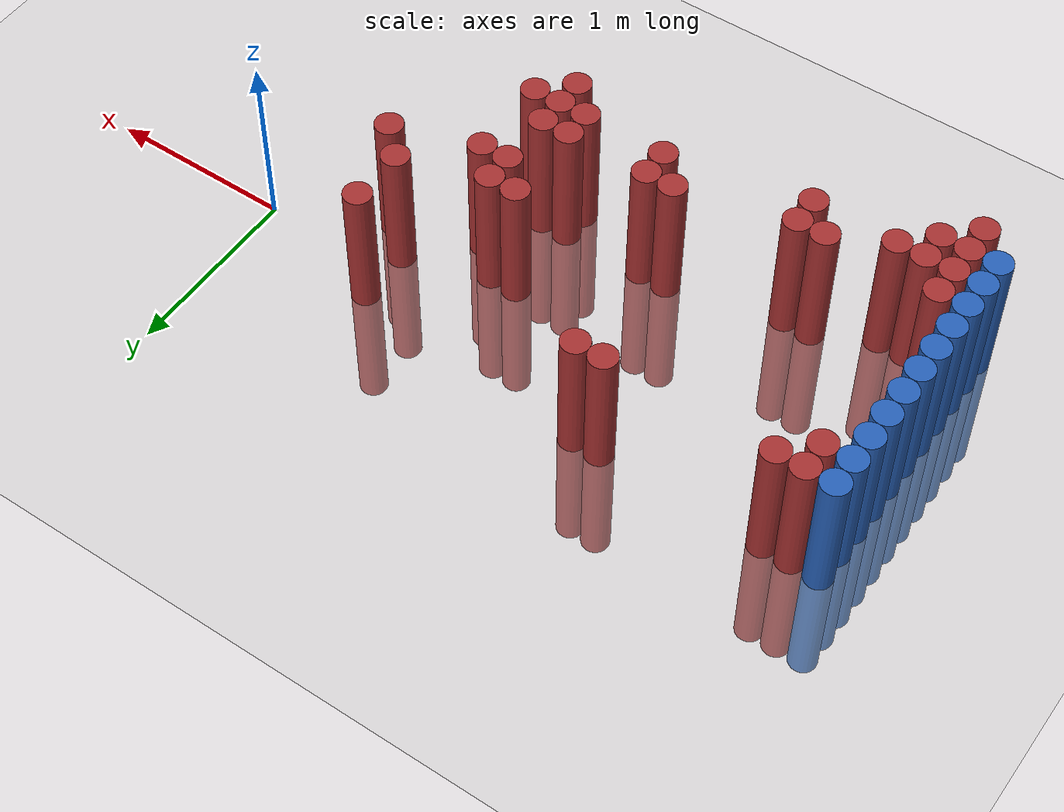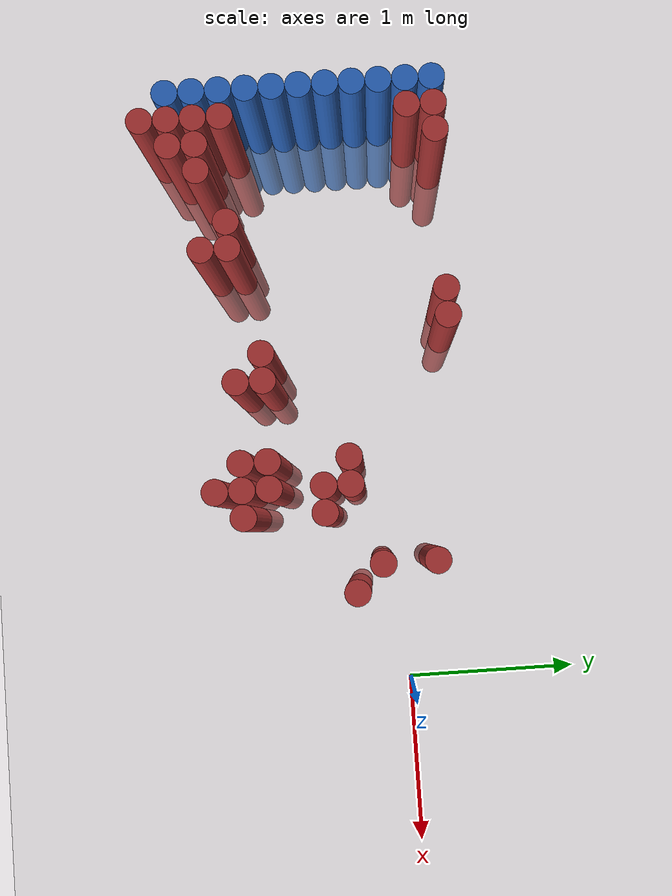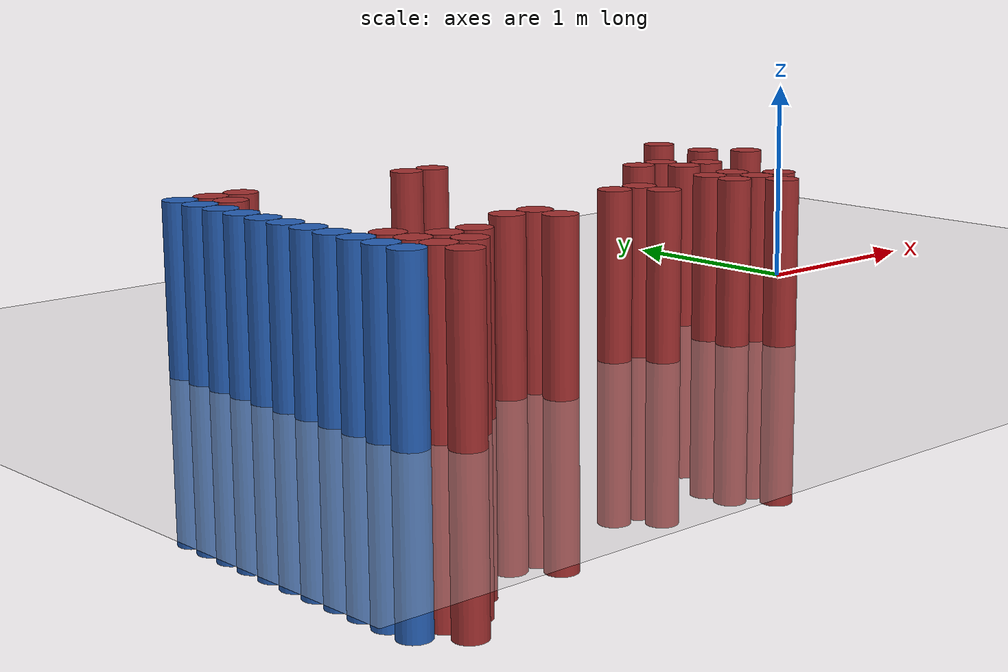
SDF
<sdf version="1.6">
 <world name="default">
  <model name="ground_plane">
   <static>1</static>
   <link name="link">
    <collision name="collision">
     <geometry><plane><normal>0 0 1</normal><size>100 100</size></plane></geometry>
     <surface><friction><ode><mu>100</mu><mu2>50</mu2></ode></friction></surface>
    </collision>
    <visual name="visual">
     <cast_shadows>0</cast_shadows>
     <geometry><plane><normal>0 0 1</normal><size>100 100</size></plane></geometry>
     <material>
      <script><uri>file://media/materials/scripts/gazebo.material</uri><name>Gazebo/Grey</name></script>
     </material>
    </visual>
   </link>
  </model>
  <model name="unit_cylinder_99">
   <static>1</static>
   <pose>-3.425000 -1.175000 0.000000 0.000000 0.000000 0.000000</pose>
   <link name="link">
    <inertial>
     <mass>1</mass>
     <inertia><ixx>0.145833</ixx><ixy>0</ixy><ixz>0</ixz><iyy>0.145833</iyy><iyz>0</iyz><izz>0.125</izz></inertia>
    </inertial>
    <collision name="collision">
     <geometry><cylinder><radius>0.075000</radius><length>1.5</length></cylinder></geometry>
    </collision>
    <visual name="visual">
     <geometry><cylinder><radius>0.075000</radius><length>1.5</length></cylinder></geometry>
     <material>
      <ambient>0.152000 0.379000 0.720000 1</ambient>
      <diffuse>0.152000 0.379000 0.720000 1</diffuse>
     </material>
     <material>
      <script><name>Gazebo/Grey</name><uri>file://media/materials/scripts/gazebo.material</uri></script>
     </material>
    </visual>
   </link>
  </model>
  <model name="unit_cylinder_101">
   <static>1</static>
   <pose>-3.425000 -1.025000 0.000000 0.000000 0.000000 0.000000</pose>
   <link name="link">
    <inertial>
     <mass>1</mass>
     <inertia><ixx>0.145833</ixx><ixy>0</ixy><ixz>0</ixz><iyy>0.145833</iyy><iyz>0</iyz><izz>0.125</izz></inertia>
    </inertial>
    <collision name="collision">
     <geometry><cylinder><radius>0.075000</radius><length>1.5</length></cylinder></geometry>
    </collision>
    <visual name="visual">
     <geometry><cylinder><radius>0.075000</radius><length>1.5</length></cylinder></geometry>
     <material>
      <ambient>0.152000 0.379000 0.720000 1</ambient>
      <diffuse>0.152000 0.379000 0.720000 1</diffuse>
     </material>
     <material>
      <script><name>Gazebo/Grey</name><uri>file://media/materials/scripts/gazebo.material</uri></script>
     </material>
    </visual>
   </link>
  </model>
  <model name="unit_cylinder_103">
   <static>1</static>
   <pose>-3.425000 -0.875000 0.000000 0.000000 0.000000 0.000000</pose>
   <link name="link">
    <inertial>
     <mass>1</mass>
     <inertia><ixx>0.145833</ixx><ixy>0</ixy><ixz>0</ixz><iyy>0.145833</iyy><iyz>0</iyz><izz>0.125</izz></inertia>
    </inertial>
    <collision name="collision">
     <geometry><cylinder><radius>0.075000</radius><length>1.5</length></cylinder></geometry>
    </collision>
    <visual name="visual">
     <geometry><cylinder><radius>0.075000</radius><length>1.5</length></cylinder></geometry>
     <material>
      <ambient>0.152000 0.379000 0.720000 1</ambient>
      <diffuse>0.152000 0.379000 0.720000 1</diffuse>
     </material>
     <material>
      <script><name>Gazebo/Grey</name><uri>file://media/materials/scripts/gazebo.material</uri></script>
     </material>
    </visual>
   </link>
  </model>
  <model name="unit_cylinder_105">
   <static>1</static>
   <pose>-3.425000 -0.725000 0.000000 0.000000 0.000000 0.000000</pose>
   <link name="link">
    <inertial>
     <mass>1</mass>
     <inertia><ixx>0.145833</ixx><ixy>0</ixy><ixz>0</ixz><iyy>0.145833</iyy><iyz>0</iyz><izz>0.125</izz></inertia>
    </inertial>
    <collision name="collision">
     <geometry><cylinder><radius>0.075000</radius><length>1.5</length></cylinder></geometry>
    </collision>
    <visual name="visual">
     <geometry><cylinder><radius>0.075000</radius><length>1.5</length></cylinder></geometry>
     <material>
      <ambient>0.152000 0.379000 0.720000 1</ambient>
      <diffuse>0.152000 0.379000 0.720000 1</diffuse>
     </material>
     <material>
      <script><name>Gazebo/Grey</name><uri>file://media/materials/scripts/gazebo.material</uri></script>
     </material>
    </visual>
   </link>
  </model>
  <model name="unit_cylinder_107">
   <static>1</static>
   <pose>-3.425000 -0.575000 0.000000 0.000000 0.000000 0.000000</pose>
   <link name="link">
    <inertial>
     <mass>1</mass>
     <inertia><ixx>0.145833</ixx><ixy>0</ixy><ixz>0</ixz><iyy>0.145833</iyy><iyz>0</iyz><izz>0.125</izz></inertia>
    </inertial>
    <collision name="collision">
     <geometry><cylinder><radius>0.075000</radius><length>1.5</length></cylinder></geometry>
    </collision>
    <visual name="visual">
     <geometry><cylinder><radius>0.075000</radius><length>1.5</length></cylinder></geometry>
     <material>
      <ambient>0.152000 0.379000 0.720000 1</ambient>
      <diffuse>0.152000 0.379000 0.720000 1</diffuse>
     </material>
     <material>
      <script><name>Gazebo/Grey</name><uri>file://media/materials/scripts/gazebo.material</uri></script>
     </material>
    </visual>
   </link>
  </model>
  <model name="unit_cylinder_109">
   <static>1</static>
   <pose>-3.425000 -0.425000 0.000000 0.000000 0.000000 0.000000</pose>
   <link name="link">
    <inertial>
     <mass>1</mass>
     <inertia><ixx>0.145833</ixx><ixy>0</ixy><ixz>0</ixz><iyy>0.145833</iyy><iyz>0</iyz><izz>0.125</izz></inertia>
    </inertial>
    <collision name="collision">
     <geometry><cylinder><radius>0.075000</radius><length>1.5</length></cylinder></geometry>
    </collision>
    <visual name="visual">
     <geometry><cylinder><radius>0.075000</radius><length>1.5</length></cylinder></geometry>
     <material>
      <ambient>0.152000 0.379000 0.720000 1</ambient>
      <diffuse>0.152000 0.379000 0.720000 1</diffuse>
     </material>
     <material>
      <script><name>Gazebo/Grey</name><uri>file://media/materials/scripts/gazebo.material</uri></script>
     </material>
    </visual>
   </link>
  </model>
  <model name="unit_cylinder_111">
   <static>1</static>
   <pose>-3.425000 -0.275000 0.000000 0.000000 0.000000 0.000000</pose>
   <link name="link">
    <inertial>
     <mass>1</mass>
     <inertia><ixx>0.145833</ixx><ixy>0</ixy><ixz>0</ixz><iyy>0.145833</iyy><iyz>0</iyz><izz>0.125</izz></inertia>
    </inertial>
    <collision name="collision">
     <geometry><cylinder><radius>0.075000</radius><length>1.5</length></cylinder></geometry>
    </collision>
    <visual name="visual">
     <geometry><cylinder><radius>0.075000</radius><length>1.5</length></cylinder></geometry>
     <material>
      <ambient>0.152000 0.379000 0.720000 1</ambient>
      <diffuse>0.152000 0.379000 0.720000 1</diffuse>
     </material>
     <material>
      <script><name>Gazebo/Grey</name><uri>file://media/materials/scripts/gazebo.material</uri></script>
     </material>
    </visual>
   </link>
  </model>
  <model name="unit_cylinder_113">
   <static>1</static>
   <pose>-3.425000 -0.125000 0.000000 0.000000 0.000000 0.000000</pose>
   <link name="link">
    <inertial>
     <mass>1</mass>
     <inertia><ixx>0.145833</ixx><ixy>0</ixy><ixz>0</ixz><iyy>0.145833</iyy><iyz>0</iyz><izz>0.125</izz></inertia>
    </inertial>
    <collision name="collision">
     <geometry><cylinder><radius>0.075000</radius><length>1.5</length></cylinder></geometry>
    </collision>
    <visual name="visual">
     <geometry><cylinder><radius>0.075000</radius><length>1.5</length></cylinder></geometry>
     <material>
      <ambient>0.152000 0.379000 0.720000 1</ambient>
      <diffuse>0.152000 0.379000 0.720000 1</diffuse>
     </material>
     <material>
      <script><name>Gazebo/Grey</name><uri>file://media/materials/scripts/gazebo.material</uri></script>
     </material>
    </visual>
   </link>
  </model>
  <model name="unit_cylinder_115">
   <static>1</static>
   <pose>-3.425000 0.025000 0.000000 0.000000 0.000000 0.000000</pose>
   <link name="link">
    <inertial>
     <mass>1</mass>
     <inertia><ixx>0.145833</ixx><ixy>0</ixy><ixz>0</ixz><iyy>0.145833</iyy><iyz>0</iyz><izz>0.125</izz></inertia>
    </inertial>
    <collision name="collision">
     <geometry><cylinder><radius>0.075000</radius><length>1.5</length></cylinder></geometry>
    </collision>
    <visual name="visual">
     <geometry><cylinder><radius>0.075000</radius><length>1.5</length></cylinder></geometry>
     <material>
      <ambient>0.152000 0.379000 0.720000 1</ambient>
      <diffuse>0.152000 0.379000 0.720000 1</diffuse>
     </material>
     <material>
      <script><name>Gazebo/Grey</name><uri>file://media/materials/scripts/gazebo.material</uri></script>
     </material>
    </visual>
   </link>
  </model>
  <model name="unit_cylinder_117">
   <static>1</static>
   <pose>-3.425000 0.175000 0.000000 0.000000 0.000000 0.000000</pose>
   <link name="link">
    <inertial>
     <mass>1</mass>
     <inertia><ixx>0.145833</ixx><ixy>0</ixy><ixz>0</ixz><iyy>0.145833</iyy><iyz>0</iyz><izz>0.125</izz></inertia>
    </inertial>
    <collision name="collision">
     <geometry><cylinder><radius>0.075000</radius><length>1.5</length></cylinder></geometry>
    </collision>
    <visual name="visual">
     <geometry><cylinder><radius>0.075000</radius><length>1.5</length></cylinder></geometry>
     <material>
      <ambient>0.152000 0.379000 0.720000 1</ambient>
      <diffuse>0.152000 0.379000 0.720000 1</diffuse>
     </material>
     <material>
      <script><name>Gazebo/Grey</name><uri>file://media/materials/scripts/gazebo.material</uri></script>
     </material>
    </visual>
   </link>
  </model>
  <model name="unit_cylinder_119">
   <static>1</static>
   <pose>-3.425000 0.325000 0.000000 0.000000 0.000000 0.000000</pose>
   <link name="link">
    <inertial>
     <mass>1</mass>
     <inertia><ixx>0.145833</ixx><ixy>0</ixy><ixz>0</ixz><iyy>0.145833</iyy><iyz>0</iyz><izz>0.125</izz></inertia>
    </inertial>
    <collision name="collision">
     <geometry><cylinder><radius>0.075000</radius><length>1.5</length></cylinder></geometry>
    </collision>
    <visual name="visual">
     <geometry><cylinder><radius>0.075000</radius><length>1.5</length></cylinder></geometry>
     <material>
      <ambient>0.152000 0.379000 0.720000 1</ambient>
      <diffuse>0.152000 0.379000 0.720000 1</diffuse>
     </material>
     <material>
      <script><name>Gazebo/Grey</name><uri>file://media/materials/scripts/gazebo.material</uri></script>
     </material>
    </visual>
   </link>
  </model>
  <model name="unit_cylinder_213">
   <static>1</static>
   <pose>-3.425000 -1.175000 0.000000 0.000000 0.000000 0.000000</pose>
   <link name="link">
    <inertial>
     <mass>1</mass>
     <inertia><ixx>0.145833</ixx><ixy>0</ixy><ixz>0</ixz><iyy>0.145833</iyy><iyz>0</iyz><izz>0.125</izz></inertia>
    </inertial>
    <collision name="collision">
     <geometry><cylinder><radius>0.075000</radius><length>1.5</length></cylinder></geometry>
    </collision>
    <visual name="visual">
     <geometry><cylinder><radius>0.075000</radius><length>1.5</length></cylinder></geometry>
     <material>
      <ambient>0.152000 0.379000 0.720000 1</ambient>
      <diffuse>0.152000 0.379000 0.720000 1</diffuse>
     </material>
     <material>
      <script><name>Gazebo/Grey</name><uri>file://media/materials/scripts/gazebo.material</uri></script>
     </material>
    </visual>
   </link>
  </model>
  <model name="unit_cylinder_214">
   <static>1</static>
   <pose>-3.425000 -1.025000 0.000000 0.000000 0.000000 0.000000</pose>
   <link name="link">
    <inertial>
     <mass>1</mass>
     <inertia><ixx>0.145833</ixx><ixy>0</ixy><ixz>0</ixz><iyy>0.145833</iyy><iyz>0</iyz><izz>0.125</izz></inertia>
    </inertial>
    <collision name="collision">
     <geometry><cylinder><radius>0.075000</radius><length>1.5</length></cylinder></geometry>
    </collision>
    <visual name="visual">
     <geometry><cylinder><radius>0.075000</radius><length>1.5</length></cylinder></geometry>
     <material>
      <ambient>0.152000 0.379000 0.720000 1</ambient>
      <diffuse>0.152000 0.379000 0.720000 1</diffuse>
     </material>
     <material>
      <script><name>Gazebo/Grey</name><uri>file://media/materials/scripts/gazebo.material</uri></script>
     </material>
    </visual>
   </link>
  </model>
  <model name="unit_cylinder_215">
   <static>1</static>
   <pose>-3.425000 -0.875000 0.000000 0.000000 0.000000 0.000000</pose>
   <link name="link">
    <inertial>
     <mass>1</mass>
     <inertia><ixx>0.145833</ixx><ixy>0</ixy><ixz>0</ixz><iyy>0.145833</iyy><iyz>0</iyz><izz>0.125</izz></inertia>
    </inertial>
    <collision name="collision">
     <geometry><cylinder><radius>0.075000</radius><length>1.5</length></cylinder></geometry>
    </collision>
    <visual name="visual">
     <geometry><cylinder><radius>0.075000</radius><length>1.5</length></cylinder></geometry>
     <material>
      <ambient>0.152000 0.379000 0.720000 1</ambient>
      <diffuse>0.152000 0.379000 0.720000 1</diffuse>
     </material>
     <material>
      <script><name>Gazebo/Grey</name><uri>file://media/materials/scripts/gazebo.material</uri></script>
     </material>
    </visual>
   </link>
  </model>
  <model name="unit_cylinder_216">
   <static>1</static>
   <pose>-3.425000 -0.725000 0.000000 0.000000 0.000000 0.000000</pose>
   <link name="link">
    <inertial>
     <mass>1</mass>
     <inertia><ixx>0.145833</ixx><ixy>0</ixy><ixz>0</ixz><iyy>0.145833</iyy><iyz>0</iyz><izz>0.125</izz></inertia>
    </inertial>
    <collision name="collision">
     <geometry><cylinder><radius>0.075000</radius><length>1.5</length></cylinder></geometry>
    </collision>
    <visual name="visual">
     <geometry><cylinder><radius>0.075000</radius><length>1.5</length></cylinder></geometry>
     <material>
      <ambient>0.152000 0.379000 0.720000 1</ambient>
      <diffuse>0.152000 0.379000 0.720000 1</diffuse>
     </material>
     <material>
      <script><name>Gazebo/Grey</name><uri>file://media/materials/scripts/gazebo.material</uri></script>
     </material>
    </visual>
   </link>
  </model>
  <model name="unit_cylinder_217">
   <static>1</static>
   <pose>-3.425000 -0.575000 0.000000 0.000000 0.000000 0.000000</pose>
   <link name="link">
    <inertial>
     <mass>1</mass>
     <inertia><ixx>0.145833</ixx><ixy>0</ixy><ixz>0</ixz><iyy>0.145833</iyy><iyz>0</iyz><izz>0.125</izz></inertia>
    </inertial>
    <collision name="collision">
     <geometry><cylinder><radius>0.075000</radius><length>1.5</length></cylinder></geometry>
    </collision>
    <visual name="visual">
     <geometry><cylinder><radius>0.075000</radius><length>1.5</length></cylinder></geometry>
     <material>
      <ambient>0.152000 0.379000 0.720000 1</ambient>
      <diffuse>0.152000 0.379000 0.720000 1</diffuse>
     </material>
     <material>
      <script><name>Gazebo/Grey</name><uri>file://media/materials/scripts/gazebo.material</uri></script>
     </material>
    </visual>
   </link>
  </model>
  <model name="unit_cylinder_218">
   <static>1</static>
   <pose>-3.425000 -0.425000 0.000000 0.000000 0.000000 0.000000</pose>
   <link name="link">
    <inertial>
     <mass>1</mass>
     <inertia><ixx>0.145833</ixx><ixy>0</ixy><ixz>0</ixz><iyy>0.145833</iyy><iyz>0</iyz><izz>0.125</izz></inertia>
    </inertial>
    <collision name="collision">
     <geometry><cylinder><radius>0.075000</radius><length>1.5</length></cylinder></geometry>
    </collision>
    <visual name="visual">
     <geometry><cylinder><radius>0.075000</radius><length>1.5</length></cylinder></geometry>
     <material>
      <ambient>0.152000 0.379000 0.720000 1</ambient>
      <diffuse>0.152000 0.379000 0.720000 1</diffuse>
     </material>
     <material>
      <script><name>Gazebo/Grey</name><uri>file://media/materials/scripts/gazebo.material</uri></script>
     </material>
    </visual>
   </link>
  </model>
  <model name="unit_cylinder_219">
   <static>1</static>
   <pose>-3.425000 -0.275000 0.000000 0.000000 0.000000 0.000000</pose>
   <link name="link">
    <inertial>
     <mass>1</mass>
     <inertia><ixx>0.145833</ixx><ixy>0</ixy><ixz>0</ixz><iyy>0.145833</iyy><iyz>0</iyz><izz>0.125</izz></inertia>
    </inertial>
    <collision name="collision">
     <geometry><cylinder><radius>0.075000</radius><length>1.5</length></cylinder></geometry>
    </collision>
    <visual name="visual">
     <geometry><cylinder><radius>0.075000</radius><length>1.5</length></cylinder></geometry>
     <material>
      <ambient>0.152000 0.379000 0.720000 1</ambient>
      <diffuse>0.152000 0.379000 0.720000 1</diffuse>
     </material>
     <material>
      <script><name>Gazebo/Grey</name><uri>file://media/materials/scripts/gazebo.material</uri></script>
     </material>
    </visual>
   </link>
  </model>
  <model name="unit_cylinder_220">
   <static>1</static>
   <pose>-3.425000 -0.125000 0.000000 0.000000 0.000000 0.000000</pose>
   <link name="link">
    <inertial>
     <mass>1</mass>
     <inertia><ixx>0.145833</ixx><ixy>0</ixy><ixz>0</ixz><iyy>0.145833</iyy><iyz>0</iyz><izz>0.125</izz></inertia>
    </inertial>
    <collision name="collision">
     <geometry><cylinder><radius>0.075000</radius><length>1.5</length></cylinder></geometry>
    </collision>
    <visual name="visual">
     <geometry><cylinder><radius>0.075000</radius><length>1.5</length></cylinder></geometry>
     <material>
      <ambient>0.152000 0.379000 0.720000 1</ambient>
      <diffuse>0.152000 0.379000 0.720000 1</diffuse>
     </material>
     <material>
      <script><name>Gazebo/Grey</name><uri>file://media/materials/scripts/gazebo.material</uri></script>
     </material>
    </visual>
   </link>
  </model>
  <model name="unit_cylinder_221">
   <static>1</static>
   <pose>-3.425000 0.025000 0.000000 0.000000 0.000000 0.000000</pose>
   <link name="link">
    <inertial>
     <mass>1</mass>
     <inertia><ixx>0.145833</ixx><ixy>0</ixy><ixz>0</ixz><iyy>0.145833</iyy><iyz>0</iyz><izz>0.125</izz></inertia>
    </inertial>
    <collision name="collision">
     <geometry><cylinder><radius>0.075000</radius><length>1.5</length></cylinder></geometry>
    </collision>
    <visual name="visual">
     <geometry><cylinder><radius>0.075000</radius><length>1.5</length></cylinder></geometry>
     <material>
      <ambient>0.152000 0.379000 0.720000 1</ambient>
      <diffuse>0.152000 0.379000 0.720000 1</diffuse>
     </material>
     <material>
      <script><name>Gazebo/Grey</name><uri>file://media/materials/scripts/gazebo.material</uri></script>
     </material>
    </visual>
   </link>
  </model>
  <model name="unit_cylinder_222">
   <static>1</static>
   <pose>-3.425000 0.175000 0.000000 0.000000 0.000000 0.000000</pose>
   <link name="link">
    <inertial>
     <mass>1</mass>
     <inertia><ixx>0.145833</ixx><ixy>0</ixy><ixz>0</ixz><iyy>0.145833</iyy><iyz>0</iyz><izz>0.125</izz></inertia>
    </inertial>
    <collision name="collision">
     <geometry><cylinder><radius>0.075000</radius><length>1.5</length></cylinder></geometry>
    </collision>
    <visual name="visual">
     <geometry><cylinder><radius>0.075000</radius><length>1.5</length></cylinder></geometry>
     <material>
      <ambient>0.152000 0.379000 0.720000 1</ambient>
      <diffuse>0.152000 0.379000 0.720000 1</diffuse>
     </material>
     <material>
      <script><name>Gazebo/Grey</name><uri>file://media/materials/scripts/gazebo.material</uri></script>
     </material>
    </visual>
   </link>
  </model>
  <model name="unit_cylinder_223">
   <static>1</static>
   <pose>-3.425000 0.325000 0.000000 0.000000 0.000000 0.000000</pose>
   <link name="link">
    <inertial>
     <mass>1</mass>
     <inertia><ixx>0.145833</ixx><ixy>0</ixy><ixz>0</ixz><iyy>0.145833</iyy><iyz>0</iyz><izz>0.125</izz></inertia>
    </inertial>
    <collision name="collision">
     <geometry><cylinder><radius>0.075000</radius><length>1.5</length></cylinder></geometry>
    </collision>
    <visual name="visual">
     <geometry><cylinder><radius>0.075000</radius><length>1.5</length></cylinder></geometry>
     <material>
      <ambient>0.152000 0.379000 0.720000 1</ambient>
      <diffuse>0.152000 0.379000 0.720000 1</diffuse>
     </material>
     <material>
      <script><name>Gazebo/Grey</name><uri>file://media/materials/scripts/gazebo.material</uri></script>
     </material>
    </visual>
   </link>
  </model>
  <model name="unit_cylinder_258">
   <static>1</static>
   <pose>-3.275000 -1.325000 0.000000 0.000000 0.000000 0.000000</pose>
   <link name="link">
    <inertial>
     <mass>1</mass>
     <inertia><ixx>0.145833</ixx><ixy>0</ixy><ixz>0</ixz><iyy>0.145833</iyy><iyz>0</iyz><izz>0.125</izz></inertia>
    </inertial>
    <collision name="collision">
     <geometry><cylinder><radius>0.075000</radius><length>1.5</length></cylinder></geometry>
    </collision>
    <visual name="visual">
     <geometry><cylinder><radius>0.075000</radius><length>1.5</length></cylinder></geometry>
     <material>
      <ambient>0.648000 0.192000 0.192000 1</ambient>
      <diffuse>0.648000 0.192000 0.192000 1</diffuse>
     </material>
     <material>
      <script><name>Gazebo/Grey</name><uri>file://media/materials/scripts/gazebo.material</uri></script>
     </material>
    </visual>
   </link>
  </model>
  <model name="unit_cylinder_259">
   <static>1</static>
   <pose>-3.275000 -1.175000 0.000000 0.000000 0.000000 0.000000</pose>
   <link name="link">
    <inertial>
     <mass>1</mass>
     <inertia><ixx>0.145833</ixx><ixy>0</ixy><ixz>0</ixz><iyy>0.145833</iyy><iyz>0</iyz><izz>0.125</izz></inertia>
    </inertial>
    <collision name="collision">
     <geometry><cylinder><radius>0.075000</radius><length>1.5</length></cylinder></geometry>
    </collision>
    <visual name="visual">
     <geometry><cylinder><radius>0.075000</radius><length>1.5</length></cylinder></geometry>
     <material>
      <ambient>0.648000 0.192000 0.192000 1</ambient>
      <diffuse>0.648000 0.192000 0.192000 1</diffuse>
     </material>
     <material>
      <script><name>Gazebo/Grey</name><uri>file://media/materials/scripts/gazebo.material</uri></script>
     </material>
    </visual>
   </link>
  </model>
  <model name="unit_cylinder_260">
   <static>1</static>
   <pose>-3.275000 -1.025000 0.000000 0.000000 0.000000 0.000000</pose>
   <link name="link">
    <inertial>
     <mass>1</mass>
     <inertia><ixx>0.145833</ixx><ixy>0</ixy><ixz>0</ixz><iyy>0.145833</iyy><iyz>0</iyz><izz>0.125</izz></inertia>
    </inertial>
    <collision name="collision">
     <geometry><cylinder><radius>0.075000</radius><length>1.5</length></cylinder></geometry>
    </collision>
    <visual name="visual">
     <geometry><cylinder><radius>0.075000</radius><length>1.5</length></cylinder></geometry>
     <material>
      <ambient>0.648000 0.192000 0.192000 1</ambient>
      <diffuse>0.648000 0.192000 0.192000 1</diffuse>
     </material>
     <material>
      <script><name>Gazebo/Grey</name><uri>file://media/materials/scripts/gazebo.material</uri></script>
     </material>
    </visual>
   </link>
  </model>
  <model name="unit_cylinder_261">
   <static>1</static>
   <pose>-3.275000 -0.875000 0.000000 0.000000 0.000000 0.000000</pose>
   <link name="link">
    <inertial>
     <mass>1</mass>
     <inertia><ixx>0.145833</ixx><ixy>0</ixy><ixz>0</ixz><iyy>0.145833</iyy><iyz>0</iyz><izz>0.125</izz></inertia>
    </inertial>
    <collision name="collision">
     <geometry><cylinder><radius>0.075000</radius><length>1.5</length></cylinder></geometry>
    </collision>
    <visual name="visual">
     <geometry><cylinder><radius>0.075000</radius><length>1.5</length></cylinder></geometry>
     <material>
      <ambient>0.648000 0.192000 0.192000 1</ambient>
      <diffuse>0.648000 0.192000 0.192000 1</diffuse>
     </material>
     <material>
      <script><name>Gazebo/Grey</name><uri>file://media/materials/scripts/gazebo.material</uri></script>
     </material>
    </visual>
   </link>
  </model>
  <model name="unit_cylinder_262">
   <static>1</static>
   <pose>-3.275000 0.175000 0.000000 0.000000 0.000000 0.000000</pose>
   <link name="link">
    <inertial>
     <mass>1</mass>
     <inertia><ixx>0.145833</ixx><ixy>0</ixy><ixz>0</ixz><iyy>0.145833</iyy><iyz>0</iyz><izz>0.125</izz></inertia>
    </inertial>
    <collision name="collision">
     <geometry><cylinder><radius>0.075000</radius><length>1.5</length></cylinder></geometry>
    </collision>
    <visual name="visual">
     <geometry><cylinder><radius>0.075000</radius><length>1.5</length></cylinder></geometry>
     <material>
      <ambient>0.648000 0.192000 0.192000 1</ambient>
      <diffuse>0.648000 0.192000 0.192000 1</diffuse>
     </material>
     <material>
      <script><name>Gazebo/Grey</name><uri>file://media/materials/scripts/gazebo.material</uri></script>
     </material>
    </visual>
   </link>
  </model>
  <model name="unit_cylinder_263">
   <static>1</static>
   <pose>-3.275000 0.325000 0.000000 0.000000 0.000000 0.000000</pose>
   <link name="link">
    <inertial>
     <mass>1</mass>
     <inertia><ixx>0.145833</ixx><ixy>0</ixy><ixz>0</ixz><iyy>0.145833</iyy><iyz>0</iyz><izz>0.125</izz></inertia>
    </inertial>
    <collision name="collision">
     <geometry><cylinder><radius>0.075000</radius><length>1.5</length></cylinder></geometry>
    </collision>
    <visual name="visual">
     <geometry><cylinder><radius>0.075000</radius><length>1.5</length></cylinder></geometry>
     <material>
      <ambient>0.648000 0.192000 0.192000 1</ambient>
      <diffuse>0.648000 0.192000 0.192000 1</diffuse>
     </material>
     <material>
      <script><name>Gazebo/Grey</name><uri>file://media/materials/scripts/gazebo.material</uri></script>
     </material>
    </visual>
   </link>
  </model>
  <model name="unit_cylinder_277">
   <static>1</static>
   <pose>-3.125000 -1.175000 0.000000 0.000000 0.000000 0.000000</pose>
   <link name="link">
    <inertial>
     <mass>1</mass>
     <inertia><ixx>0.145833</ixx><ixy>0</ixy><ixz>0</ixz><iyy>0.145833</iyy><iyz>0</iyz><izz>0.125</izz></inertia>
    </inertial>
    <collision name="collision">
     <geometry><cylinder><radius>0.075000</radius><length>1.5</length></cylinder></geometry>
    </collision>
    <visual name="visual">
     <geometry><cylinder><radius>0.075000</radius><length>1.5</length></cylinder></geometry>
     <material>
      <ambient>0.648000 0.192000 0.192000 1</ambient>
      <diffuse>0.648000 0.192000 0.192000 1</diffuse>
     </material>
     <material>
      <script><name>Gazebo/Grey</name><uri>file://media/materials/scripts/gazebo.material</uri></script>
     </material>
    </visual>
   </link>
  </model>
  <model name="unit_cylinder_278">
   <static>1</static>
   <pose>-3.125000 -1.025000 0.000000 0.000000 0.000000 0.000000</pose>
   <link name="link">
    <inertial>
     <mass>1</mass>
     <inertia><ixx>0.145833</ixx><ixy>0</ixy><ixz>0</ixz><iyy>0.145833</iyy><iyz>0</iyz><izz>0.125</izz></inertia>
    </inertial>
    <collision name="collision">
     <geometry><cylinder><radius>0.075000</radius><length>1.5</length></cylinder></geometry>
    </collision>
    <visual name="visual">
     <geometry><cylinder><radius>0.075000</radius><length>1.5</length></cylinder></geometry>
     <material>
      <ambient>0.648000 0.192000 0.192000 1</ambient>
      <diffuse>0.648000 0.192000 0.192000 1</diffuse>
     </material>
     <material>
      <script><name>Gazebo/Grey</name><uri>file://media/materials/scripts/gazebo.material</uri></script>
     </material>
    </visual>
   </link>
  </model>
  <model name="unit_cylinder_279">
   <static>1</static>
   <pose>-3.125000 0.325000 0.000000 0.000000 0.000000 0.000000</pose>
   <link name="link">
    <inertial>
     <mass>1</mass>
     <inertia><ixx>0.145833</ixx><ixy>0</ixy><ixz>0</ixz><iyy>0.145833</iyy><iyz>0</iyz><izz>0.125</izz></inertia>
    </inertial>
    <collision name="collision">
     <geometry><cylinder><radius>0.075000</radius><length>1.5</length></cylinder></geometry>
    </collision>
    <visual name="visual">
     <geometry><cylinder><radius>0.075000</radius><length>1.5</length></cylinder></geometry>
     <material>
      <ambient>0.648000 0.192000 0.192000 1</ambient>
      <diffuse>0.648000 0.192000 0.192000 1</diffuse>
     </material>
     <material>
      <script><name>Gazebo/Grey</name><uri>file://media/materials/scripts/gazebo.material</uri></script>
     </material>
    </visual>
   </link>
  </model>
  <model name="unit_cylinder_283">
   <static>1</static>
   <pose>-2.975000 -1.025000 0.000000 0.000000 0.000000 0.000000</pose>
   <link name="link">
    <inertial>
     <mass>1</mass>
     <inertia><ixx>0.145833</ixx><ixy>0</ixy><ixz>0</ixz><iyy>0.145833</iyy><iyz>0</iyz><izz>0.125</izz></inertia>
    </inertial>
    <collision name="collision">
     <geometry><cylinder><radius>0.075000</radius><length>1.5</length></cylinder></geometry>
    </collision>
    <visual name="visual">
     <geometry><cylinder><radius>0.075000</radius><length>1.5</length></cylinder></geometry>
     <material>
      <ambient>0.648000 0.192000 0.192000 1</ambient>
      <diffuse>0.648000 0.192000 0.192000 1</diffuse>
     </material>
     <material>
      <script><name>Gazebo/Grey</name><uri>file://media/materials/scripts/gazebo.material</uri></script>
     </material>
    </visual>
   </link>
  </model>
  <model name="unit_cylinder_290">
   <static>1</static>
   <pose>-2.675000 -0.875000 0.000000 0.000000 0.000000 0.000000</pose>
   <link name="link">
    <inertial>
     <mass>1</mass>
     <inertia><ixx>0.145833</ixx><ixy>0</ixy><ixz>0</ixz><iyy>0.145833</iyy><iyz>0</iyz><izz>0.125</izz></inertia>
    </inertial>
    <collision name="collision">
     <geometry><cylinder><radius>0.075000</radius><length>1.5</length></cylinder></geometry>
    </collision>
    <visual name="visual">
     <geometry><cylinder><radius>0.075000</radius><length>1.5</length></cylinder></geometry>
     <material>
      <ambient>0.648000 0.192000 0.192000 1</ambient>
      <diffuse>0.648000 0.192000 0.192000 1</diffuse>
     </material>
     <material>
      <script><name>Gazebo/Grey</name><uri>file://media/materials/scripts/gazebo.material</uri></script>
     </material>
    </visual>
   </link>
  </model>
  <model name="unit_cylinder_294">
   <static>1</static>
   <pose>-2.525000 -1.025000 0.000000 0.000000 0.000000 0.000000</pose>
   <link name="link">
    <inertial>
     <mass>1</mass>
     <inertia><ixx>0.145833</ixx><ixy>0</ixy><ixz>0</ixz><iyy>0.145833</iyy><iyz>0</iyz><izz>0.125</izz></inertia>
    </inertial>
    <collision name="collision">
     <geometry><cylinder><radius>0.075000</radius><length>1.5</length></cylinder></geometry>
    </collision>
    <visual name="visual">
     <geometry><cylinder><radius>0.075000</radius><length>1.5</length></cylinder></geometry>
     <material>
      <ambient>0.648000 0.192000 0.192000 1</ambient>
      <diffuse>0.648000 0.192000 0.192000 1</diffuse>
     </material>
     <material>
      <script><name>Gazebo/Grey</name><uri>file://media/materials/scripts/gazebo.material</uri></script>
     </material>
    </visual>
   </link>
  </model>
  <model name="unit_cylinder_295">
   <static>1</static>
   <pose>-2.525000 -0.875000 0.000000 0.000000 0.000000 0.000000</pose>
   <link name="link">
    <inertial>
     <mass>1</mass>
     <inertia><ixx>0.145833</ixx><ixy>0</ixy><ixz>0</ixz><iyy>0.145833</iyy><iyz>0</iyz><izz>0.125</izz></inertia>
    </inertial>
    <collision name="collision">
     <geometry><cylinder><radius>0.075000</radius><length>1.5</length></cylinder></geometry>
    </collision>
    <visual name="visual">
     <geometry><cylinder><radius>0.075000</radius><length>1.5</length></cylinder></geometry>
     <material>
      <ambient>0.648000 0.192000 0.192000 1</ambient>
      <diffuse>0.648000 0.192000 0.192000 1</diffuse>
     </material>
     <material>
      <script><name>Gazebo/Grey</name><uri>file://media/materials/scripts/gazebo.material</uri></script>
     </material>
    </visual>
   </link>
  </model>
  <model name="unit_cylinder_297">
   <static>1</static>
   <pose>-2.225000 0.325000 0.000000 0.000000 0.000000 0.000000</pose>
   <link name="link">
    <inertial>
     <mass>1</mass>
     <inertia><ixx>0.145833</ixx><ixy>0</ixy><ixz>0</ixz><iyy>0.145833</iyy><iyz>0</iyz><izz>0.125</izz></inertia>
    </inertial>
    <collision name="collision">
     <geometry><cylinder><radius>0.075000</radius><length>1.5</length></cylinder></geometry>
    </collision>
    <visual name="visual">
     <geometry><cylinder><radius>0.075000</radius><length>1.5</length></cylinder></geometry>
     <material>
      <ambient>0.648000 0.192000 0.192000 1</ambient>
      <diffuse>0.648000 0.192000 0.192000 1</diffuse>
     </material>
     <material>
      <script><name>Gazebo/Grey</name><uri>file://media/materials/scripts/gazebo.material</uri></script>
     </material>
    </visual>
   </link>
  </model>
  <model name="unit_cylinder_300">
   <static>1</static>
   <pose>-2.075000 0.325000 0.000000 0.000000 0.000000 0.000000</pose>
   <link name="link">
    <inertial>
     <mass>1</mass>
     <inertia><ixx>0.145833</ixx><ixy>0</ixy><ixz>0</ixz><iyy>0.145833</iyy><iyz>0</iyz><izz>0.125</izz></inertia>
    </inertial>
    <collision name="collision">
     <geometry><cylinder><radius>0.075000</radius><length>1.5</length></cylinder></geometry>
    </collision>
    <visual name="visual">
     <geometry><cylinder><radius>0.075000</radius><length>1.5</length></cylinder></geometry>
     <material>
      <ambient>0.648000 0.192000 0.192000 1</ambient>
      <diffuse>0.648000 0.192000 0.192000 1</diffuse>
     </material>
     <material>
      <script><name>Gazebo/Grey</name><uri>file://media/materials/scripts/gazebo.material</uri></script>
     </material>
    </visual>
   </link>
  </model>
  <model name="unit_cylinder_303">
   <static>1</static>
   <pose>-1.925000 -0.725000 0.000000 0.000000 0.000000 0.000000</pose>
   <link name="link">
    <inertial>
     <mass>1</mass>
     <inertia><ixx>0.145833</ixx><ixy>0</ixy><ixz>0</ixz><iyy>0.145833</iyy><iyz>0</iyz><izz>0.125</izz></inertia>
    </inertial>
    <collision name="collision">
     <geometry><cylinder><radius>0.075000</radius><length>1.5</length></cylinder></geometry>
    </collision>
    <visual name="visual">
     <geometry><cylinder><radius>0.075000</radius><length>1.5</length></cylinder></geometry>
     <material>
      <ambient>0.648000 0.192000 0.192000 1</ambient>
      <diffuse>0.648000 0.192000 0.192000 1</diffuse>
     </material>
     <material>
      <script><name>Gazebo/Grey</name><uri>file://media/materials/scripts/gazebo.material</uri></script>
     </material>
    </visual>
   </link>
  </model>
  <model name="unit_cylinder_304">
   <static>1</static>
   <pose>-1.775000 -0.875000 0.000000 0.000000 0.000000 0.000000</pose>
   <link name="link">
    <inertial>
     <mass>1</mass>
     <inertia><ixx>0.145833</ixx><ixy>0</ixy><ixz>0</ixz><iyy>0.145833</iyy><iyz>0</iyz><izz>0.125</izz></inertia>
    </inertial>
    <collision name="collision">
     <geometry><cylinder><radius>0.075000</radius><length>1.5</length></cylinder></geometry>
    </collision>
    <visual name="visual">
     <geometry><cylinder><radius>0.075000</radius><length>1.5</length></cylinder></geometry>
     <material>
      <ambient>0.648000 0.192000 0.192000 1</ambient>
      <diffuse>0.648000 0.192000 0.192000 1</diffuse>
     </material>
     <material>
      <script><name>Gazebo/Grey</name><uri>file://media/materials/scripts/gazebo.material</uri></script>
     </material>
    </visual>
   </link>
  </model>
  <model name="unit_cylinder_305">
   <static>1</static>
   <pose>-1.775000 -0.725000 0.000000 0.000000 0.000000 0.000000</pose>
   <link name="link">
    <inertial>
     <mass>1</mass>
     <inertia><ixx>0.145833</ixx><ixy>0</ixy><ixz>0</ixz><iyy>0.145833</iyy><iyz>0</iyz><izz>0.125</izz></inertia>
    </inertial>
    <collision name="collision">
     <geometry><cylinder><radius>0.075000</radius><length>1.5</length></cylinder></geometry>
    </collision>
    <visual name="visual">
     <geometry><cylinder><radius>0.075000</radius><length>1.5</length></cylinder></geometry>
     <material>
      <ambient>0.648000 0.192000 0.192000 1</ambient>
      <diffuse>0.648000 0.192000 0.192000 1</diffuse>
     </material>
     <material>
      <script><name>Gazebo/Grey</name><uri>file://media/materials/scripts/gazebo.material</uri></script>
     </material>
    </visual>
   </link>
  </model>
  <model name="unit_cylinder_316">
   <static>1</static>
   <pose>-1.325000 -0.875000 0.000000 0.000000 0.000000 0.000000</pose>
   <link name="link">
    <inertial>
     <mass>1</mass>
     <inertia><ixx>0.145833</ixx><ixy>0</ixy><ixz>0</ixz><iyy>0.145833</iyy><iyz>0</iyz><izz>0.125</izz></inertia>
    </inertial>
    <collision name="collision">
     <geometry><cylinder><radius>0.075000</radius><length>1.5</length></cylinder></geometry>
    </collision>
    <visual name="visual">
     <geometry><cylinder><radius>0.075000</radius><length>1.5</length></cylinder></geometry>
     <material>
      <ambient>0.648000 0.192000 0.192000 1</ambient>
      <diffuse>0.648000 0.192000 0.192000 1</diffuse>
     </material>
     <material>
      <script><name>Gazebo/Grey</name><uri>file://media/materials/scripts/gazebo.material</uri></script>
     </material>
    </visual>
   </link>
  </model>
  <model name="unit_cylinder_317">
   <static>1</static>
   <pose>-1.325000 -0.725000 0.000000 0.000000 0.000000 0.000000</pose>
   <link name="link">
    <inertial>
     <mass>1</mass>
     <inertia><ixx>0.145833</ixx><ixy>0</ixy><ixz>0</ixz><iyy>0.145833</iyy><iyz>0</iyz><izz>0.125</izz></inertia>
    </inertial>
    <collision name="collision">
     <geometry><cylinder><radius>0.075000</radius><length>1.5</length></cylinder></geometry>
    </collision>
    <visual name="visual">
     <geometry><cylinder><radius>0.075000</radius><length>1.5</length></cylinder></geometry>
     <material>
      <ambient>0.648000 0.192000 0.192000 1</ambient>
      <diffuse>0.648000 0.192000 0.192000 1</diffuse>
     </material>
     <material>
      <script><name>Gazebo/Grey</name><uri>file://media/materials/scripts/gazebo.material</uri></script>
     </material>
    </visual>
   </link>
  </model>
  <model name="unit_cylinder_318">
   <static>1</static>
   <pose>-1.325000 -0.275000 0.000000 0.000000 0.000000 0.000000</pose>
   <link name="link">
    <inertial>
     <mass>1</mass>
     <inertia><ixx>0.145833</ixx><ixy>0</ixy><ixz>0</ixz><iyy>0.145833</iyy><iyz>0</iyz><izz>0.125</izz></inertia>
    </inertial>
    <collision name="collision">
     <geometry><cylinder><radius>0.075000</radius><length>1.5</length></cylinder></geometry>
    </collision>
    <visual name="visual">
     <geometry><cylinder><radius>0.075000</radius><length>1.5</length></cylinder></geometry>
     <material>
      <ambient>0.648000 0.192000 0.192000 1</ambient>
      <diffuse>0.648000 0.192000 0.192000 1</diffuse>
     </material>
     <material>
      <script><name>Gazebo/Grey</name><uri>file://media/materials/scripts/gazebo.material</uri></script>
     </material>
    </visual>
   </link>
  </model>
  <model name="unit_cylinder_324">
   <static>1</static>
   <pose>-1.175000 -1.025000 0.000000 0.000000 0.000000 0.000000</pose>
   <link name="link">
    <inertial>
     <mass>1</mass>
     <inertia><ixx>0.145833</ixx><ixy>0</ixy><ixz>0</ixz><iyy>0.145833</iyy><iyz>0</iyz><izz>0.125</izz></inertia>
    </inertial>
    <collision name="collision">
     <geometry><cylinder><radius>0.075000</radius><length>1.5</length></cylinder></geometry>
    </collision>
    <visual name="visual">
     <geometry><cylinder><radius>0.075000</radius><length>1.5</length></cylinder></geometry>
     <material>
      <ambient>0.648000 0.192000 0.192000 1</ambient>
      <diffuse>0.648000 0.192000 0.192000 1</diffuse>
     </material>
     <material>
      <script><name>Gazebo/Grey</name><uri>file://media/materials/scripts/gazebo.material</uri></script>
     </material>
    </visual>
   </link>
  </model>
  <model name="unit_cylinder_325">
   <static>1</static>
   <pose>-1.175000 -0.875000 0.000000 0.000000 0.000000 0.000000</pose>
   <link name="link">
    <inertial>
     <mass>1</mass>
     <inertia><ixx>0.145833</ixx><ixy>0</ixy><ixz>0</ixz><iyy>0.145833</iyy><iyz>0</iyz><izz>0.125</izz></inertia>
    </inertial>
    <collision name="collision">
     <geometry><cylinder><radius>0.075000</radius><length>1.5</length></cylinder></geometry>
    </collision>
    <visual name="visual">
     <geometry><cylinder><radius>0.075000</radius><length>1.5</length></cylinder></geometry>
     <material>
      <ambient>0.648000 0.192000 0.192000 1</ambient>
      <diffuse>0.648000 0.192000 0.192000 1</diffuse>
     </material>
     <material>
      <script><name>Gazebo/Grey</name><uri>file://media/materials/scripts/gazebo.material</uri></script>
     </material>
    </visual>
   </link>
  </model>
  <model name="unit_cylinder_326">
   <static>1</static>
   <pose>-1.175000 -0.725000 0.000000 0.000000 0.000000 0.000000</pose>
   <link name="link">
    <inertial>
     <mass>1</mass>
     <inertia><ixx>0.145833</ixx><ixy>0</ixy><ixz>0</ixz><iyy>0.145833</iyy><iyz>0</iyz><izz>0.125</izz></inertia>
    </inertial>
    <collision name="collision">
     <geometry><cylinder><radius>0.075000</radius><length>1.5</length></cylinder></geometry>
    </collision>
    <visual name="visual">
     <geometry><cylinder><radius>0.075000</radius><length>1.5</length></cylinder></geometry>
     <material>
      <ambient>0.648000 0.192000 0.192000 1</ambient>
      <diffuse>0.648000 0.192000 0.192000 1</diffuse>
     </material>
     <material>
      <script><name>Gazebo/Grey</name><uri>file://media/materials/scripts/gazebo.material</uri></script>
     </material>
    </visual>
   </link>
  </model>
  <model name="unit_cylinder_327">
   <static>1</static>
   <pose>-1.175000 -0.425000 0.000000 0.000000 0.000000 0.000000</pose>
   <link name="link">
    <inertial>
     <mass>1</mass>
     <inertia><ixx>0.145833</ixx><ixy>0</ixy><ixz>0</ixz><iyy>0.145833</iyy><iyz>0</iyz><izz>0.125</izz></inertia>
    </inertial>
    <collision name="collision">
     <geometry><cylinder><radius>0.075000</radius><length>1.5</length></cylinder></geometry>
    </collision>
    <visual name="visual">
     <geometry><cylinder><radius>0.075000</radius><length>1.5</length></cylinder></geometry>
     <material>
      <ambient>0.648000 0.192000 0.192000 1</ambient>
      <diffuse>0.648000 0.192000 0.192000 1</diffuse>
     </material>
     <material>
      <script><name>Gazebo/Grey</name><uri>file://media/materials/scripts/gazebo.material</uri></script>
     </material>
    </visual>
   </link>
  </model>
  <model name="unit_cylinder_328">
   <static>1</static>
   <pose>-1.175000 -0.275000 0.000000 0.000000 0.000000 0.000000</pose>
   <link name="link">
    <inertial>
     <mass>1</mass>
     <inertia><ixx>0.145833</ixx><ixy>0</ixy><ixz>0</ixz><iyy>0.145833</iyy><iyz>0</iyz><izz>0.125</izz></inertia>
    </inertial>
    <collision name="collision">
     <geometry><cylinder><radius>0.075000</radius><length>1.5</length></cylinder></geometry>
    </collision>
    <visual name="visual">
     <geometry><cylinder><radius>0.075000</radius><length>1.5</length></cylinder></geometry>
     <material>
      <ambient>0.648000 0.192000 0.192000 1</ambient>
      <diffuse>0.648000 0.192000 0.192000 1</diffuse>
     </material>
     <material>
      <script><name>Gazebo/Grey</name><uri>file://media/materials/scripts/gazebo.material</uri></script>
     </material>
    </visual>
   </link>
  </model>
  <model name="unit_cylinder_331">
   <static>1</static>
   <pose>-1.025000 -0.875000 0.000000 0.000000 0.000000 0.000000</pose>
   <link name="link">
    <inertial>
     <mass>1</mass>
     <inertia><ixx>0.145833</ixx><ixy>0</ixy><ixz>0</ixz><iyy>0.145833</iyy><iyz>0</iyz><izz>0.125</izz></inertia>
    </inertial>
    <collision name="collision">
     <geometry><cylinder><radius>0.075000</radius><length>1.5</length></cylinder></geometry>
    </collision>
    <visual name="visual">
     <geometry><cylinder><radius>0.075000</radius><length>1.5</length></cylinder></geometry>
     <material>
      <ambient>0.648000 0.192000 0.192000 1</ambient>
      <diffuse>0.648000 0.192000 0.192000 1</diffuse>
     </material>
     <material>
      <script><name>Gazebo/Grey</name><uri>file://media/materials/scripts/gazebo.material</uri></script>
     </material>
    </visual>
   </link>
  </model>
  <model name="unit_cylinder_332">
   <static>1</static>
   <pose>-1.025000 -0.425000 0.000000 0.000000 0.000000 0.000000</pose>
   <link name="link">
    <inertial>
     <mass>1</mass>
     <inertia><ixx>0.145833</ixx><ixy>0</ixy><ixz>0</ixz><iyy>0.145833</iyy><iyz>0</iyz><izz>0.125</izz></inertia>
    </inertial>
    <collision name="collision">
     <geometry><cylinder><radius>0.075000</radius><length>1.5</length></cylinder></geometry>
    </collision>
    <visual name="visual">
     <geometry><cylinder><radius>0.075000</radius><length>1.5</length></cylinder></geometry>
     <material>
      <ambient>0.648000 0.192000 0.192000 1</ambient>
      <diffuse>0.648000 0.192000 0.192000 1</diffuse>
     </material>
     <material>
      <script><name>Gazebo/Grey</name><uri>file://media/materials/scripts/gazebo.material</uri></script>
     </material>
    </visual>
   </link>
  </model>
  <model name="unit_cylinder_341">
   <static>1</static>
   <pose>-0.725000 -0.125000 0.000000 0.000000 0.000000 0.000000</pose>
   <link name="link">
    <inertial>
     <mass>1</mass>
     <inertia><ixx>0.145833</ixx><ixy>0</ixy><ixz>0</ixz><iyy>0.145833</iyy><iyz>0</iyz><izz>0.125</izz></inertia>
    </inertial>
    <collision name="collision">
     <geometry><cylinder><radius>0.075000</radius><length>1.5</length></cylinder></geometry>
    </collision>
    <visual name="visual">
     <geometry><cylinder><radius>0.075000</radius><length>1.5</length></cylinder></geometry>
     <material>
      <ambient>0.648000 0.192000 0.192000 1</ambient>
      <diffuse>0.648000 0.192000 0.192000 1</diffuse>
     </material>
     <material>
      <script><name>Gazebo/Grey</name><uri>file://media/materials/scripts/gazebo.material</uri></script>
     </material>
    </visual>
   </link>
  </model>
  <model name="unit_cylinder_342">
   <static>1</static>
   <pose>-0.725000 0.175000 0.000000 0.000000 0.000000 0.000000</pose>
   <link name="link">
    <inertial>
     <mass>1</mass>
     <inertia><ixx>0.145833</ixx><ixy>0</ixy><ixz>0</ixz><iyy>0.145833</iyy><iyz>0</iyz><izz>0.125</izz></inertia>
    </inertial>
    <collision name="collision">
     <geometry><cylinder><radius>0.075000</radius><length>1.5</length></cylinder></geometry>
    </collision>
    <visual name="visual">
     <geometry><cylinder><radius>0.075000</radius><length>1.5</length></cylinder></geometry>
     <material>
      <ambient>0.648000 0.192000 0.192000 1</ambient>
      <diffuse>0.648000 0.192000 0.192000 1</diffuse>
     </material>
     <material>
      <script><name>Gazebo/Grey</name><uri>file://media/materials/scripts/gazebo.material</uri></script>
     </material>
    </visual>
   </link>
  </model>
  <model name="unit_cylinder_347">
   <static>1</static>
   <pose>-0.575000 -0.275000 0.000000 0.000000 0.000000 0.000000</pose>
   <link name="link">
    <inertial>
     <mass>1</mass>
     <inertia><ixx>0.145833</ixx><ixy>0</ixy><ixz>0</ixz><iyy>0.145833</iyy><iyz>0</iyz><izz>0.125</izz></inertia>
    </inertial>
    <collision name="collision">
     <geometry><cylinder><radius>0.075000</radius><length>1.5</length></cylinder></geometry>
    </collision>
    <visual name="visual">
     <geometry><cylinder><radius>0.075000</radius><length>1.5</length></cylinder></geometry>
     <material>
      <ambient>0.648000 0.192000 0.192000 1</ambient>
      <diffuse>0.648000 0.192000 0.192000 1</diffuse>
     </material>
     <material>
      <script><name>Gazebo/Grey</name><uri>file://media/materials/scripts/gazebo.material</uri></script>
     </material>
    </visual>
   </link>
  </model>
 </world>
</sdf>
